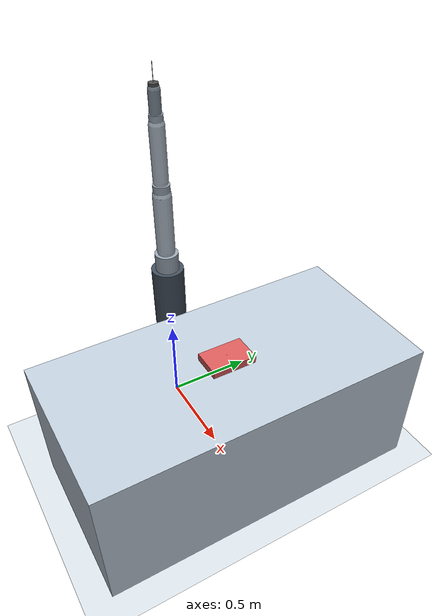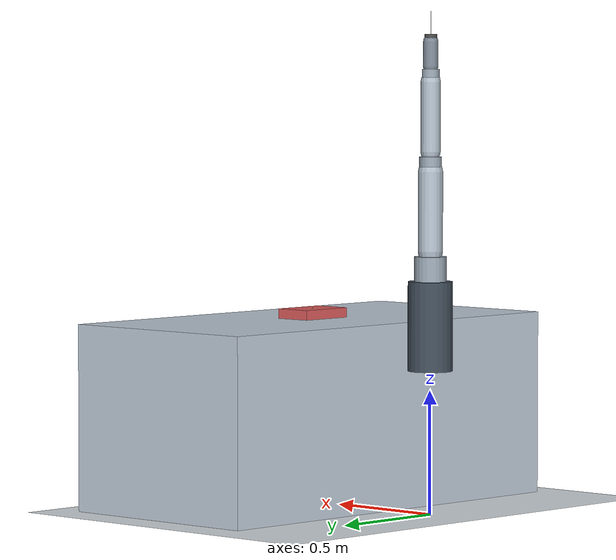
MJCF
<mujoco model="surgical_7dof_manipulator">
  <compiler angle="radian" coordinate="local"/>
  <option gravity="0 0 -9.81" timestep="0.001" integrator="RK4"/>

  <visual>
    <headlight ambient="0.45 0.45 0.45" diffuse="0.8 0.8 0.8" specular="0.2 0.2 0.2"/>
    <rgba fog="0.9 0.9 0.95 1"/>
  </visual>

  <default>
    <joint damping="0.8" armature="0.01"/>
    <geom friction="0.8 0.005 0.0001" solref="0.005 1" solimp="0.95 0.99 0.001"/>
    <motor ctrlrange="-30 30" ctrllimited="true"/>
  </default>

  <worldbody>
    <!-- Operating Room Floor & Surgical Table -->
    <geom name="floor" type="plane" size="3 3 0.1" rgba="0.85 0.88 0.90 1"/>
    <geom name="surgical_table" type="box" size="0.45 0.90 0.38" pos="0.65 0 0.38" rgba="0.75 0.80 0.85 1"/>

    <!-- Target Tissue Phantom Block -->
    <body name="tissue_phantom" pos="0.65 0 0.78">
      <geom name="tissue_geom" type="box" size="0.08 0.12 0.02" rgba="0.85 0.35 0.35 0.9" mass="0.4"/>
      <site name="puncture_target" pos="0 0 0.02" size="0.002" rgba="0.1 0.8 0.1 1"/>
    </body>

    <!-- 7-DOF Redundant Surgical Robot Arm Base -->
    <body name="robot_base" pos="0 0 0.76">
      <geom name="base_post" type="cylinder" size="0.09 0.18" rgba="0.25 0.30 0.35 1" mass="12.0"/>

      <!-- Link 1: Shoulder Yaw -->
      <body name="link1" pos="0 0 0.20">
        <joint name="joint_j1_yaw" type="hinge" axis="0 0 1" range="-2.8 2.8"/>
        <geom name="link1_geom" type="cylinder" size="0.065 0.08" rgba="0.6 0.65 0.7 1" mass="3.5"/>

        <!-- Link 2: Shoulder Pitch -->
        <body name="link2" pos="0 0 0.10">
          <joint name="joint_j2_pitch" type="hinge" axis="0 1 0" range="-1.8 1.8"/>
          <geom name="link2_geom" type="capsule" size="0.05 0.16" pos="0 0 0.16" rgba="0.7 0.75 0.8 1" mass="3.2"/>

          <!-- Link 3: Elbow Roll -->
          <body name="link3" pos="0 0 0.32">
            <joint name="joint_j3_roll" type="hinge" axis="0 0 1" range="-2.8 2.8"/>
            <geom name="link3_geom" type="cylinder" size="0.045 0.06" rgba="0.6 0.65 0.7 1" mass="2.2"/>

            <!-- Link 4: Elbow Pitch -->
            <body name="link4" pos="0 0 0.08">
              <joint name="joint_j4_pitch" type="hinge" axis="0 1 0" range="-2.0 2.0"/>
              <geom name="link4_geom" type="capsule" size="0.04 0.14" pos="0 0 0.14" rgba="0.7 0.75 0.8 1" mass="2.0"/>

              <!-- Link 5: Forearm Roll -->
              <body name="link5" pos="0 0 0.28">
                <joint name="joint_j5_roll" type="hinge" axis="0 0 1" range="-2.8 2.8"/>
                <geom name="link5_geom" type="cylinder" size="0.035 0.05" rgba="0.6 0.65 0.7 1" mass="1.5"/>

                <!-- Link 6: Wrist Pitch -->
                <body name="link6" pos="0 0 0.06">
                  <joint name="joint_j6_pitch" type="hinge" axis="0 1 0" range="-1.8 1.8"/>
                  <geom name="link6_geom" type="capsule" size="0.03 0.05" pos="0 0 0.05" rgba="0.5 0.55 0.6 1" mass="1.0"/>

                  <!-- Link 7: Wrist Roll & Surgical Needle Tool -->
                  <body name="needle_tool" pos="0 0 0.10">
                    <joint name="joint_j7_roll" type="hinge" axis="0 0 1" range="-3.14 3.14"/>
                    <geom name="tool_flange" type="cylinder" size="0.025 0.03" rgba="0.3 0.3 0.3 1" mass="0.4"/>
                    <!-- Fine Surgical Needle Shaft -->
                    <geom name="needle_shaft" type="cylinder" size="0.0015 0.06" pos="0 0 0.06" rgba="0.9 0.9 0.9 1" mass="0.02"/>
                    <site name="needle_tip" pos="0 0 0.12" size="0.001" rgba="1 0 0 1"/>
                  </body>
                </body>
              </body>
            </body>
          </body>
        </body>
      </body>
    </body>
  </worldbody>

  <actuator>
    <motor name="act_j1" joint="joint_j1_yaw" ctrlrange="-30 30"/>
    <motor name="act_j2" joint="joint_j2_pitch" ctrlrange="-30 30"/>
    <motor name="act_j3" joint="joint_j3_roll" ctrlrange="-20 20"/>
    <motor name="act_j4" joint="joint_j4_pitch" ctrlrange="-20 20"/>
    <motor name="act_j5" joint="joint_j5_roll" ctrlrange="-15 15"/>
    <motor name="act_j6" joint="joint_j6_pitch" ctrlrange="-10 10"/>
    <motor name="act_j7" joint="joint_j7_roll" ctrlrange="-10 10"/>
  </actuator>

  <sensor>
    <touch name="needle_contact_sensor" site="needle_tip"/>
  </sensor>
</mujoco>
